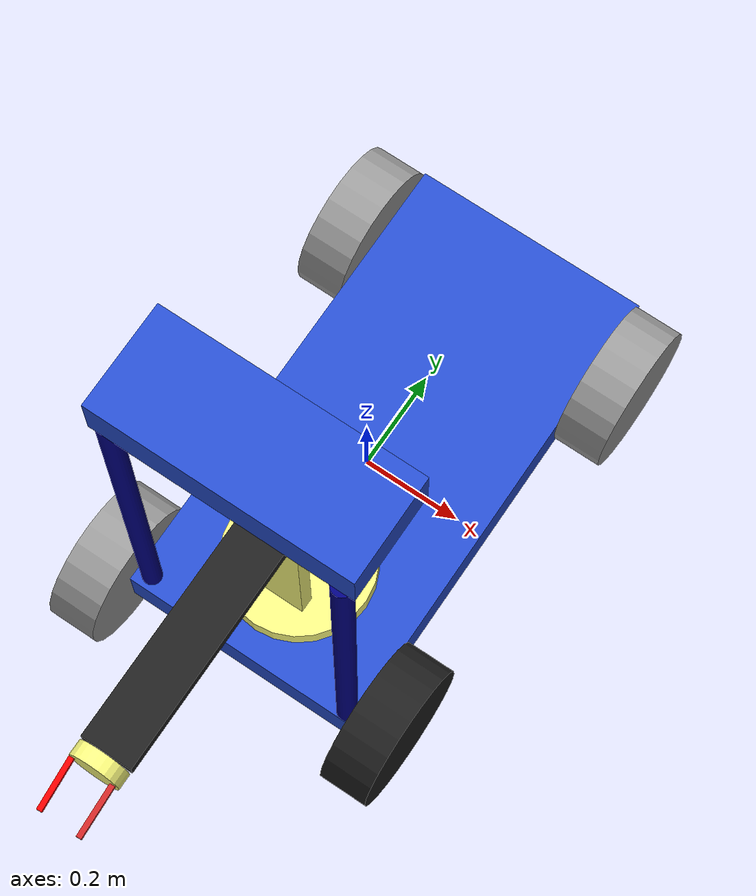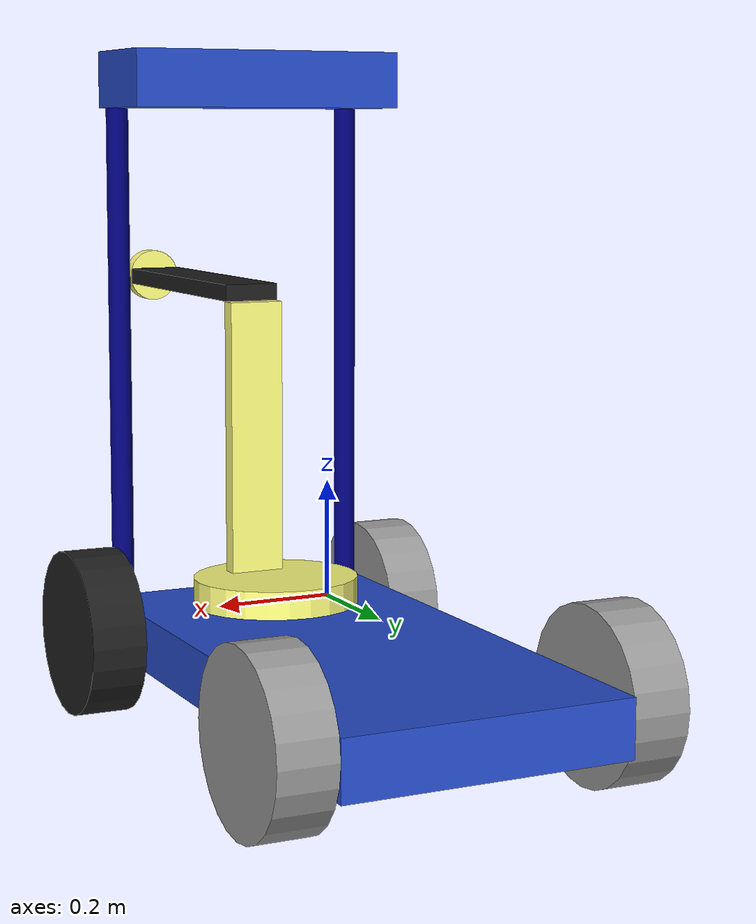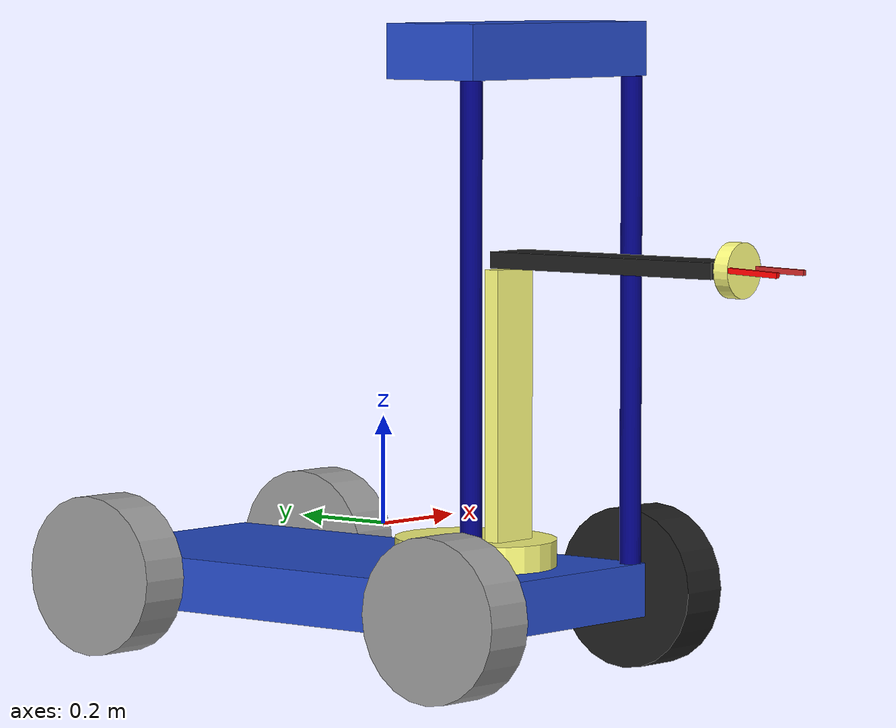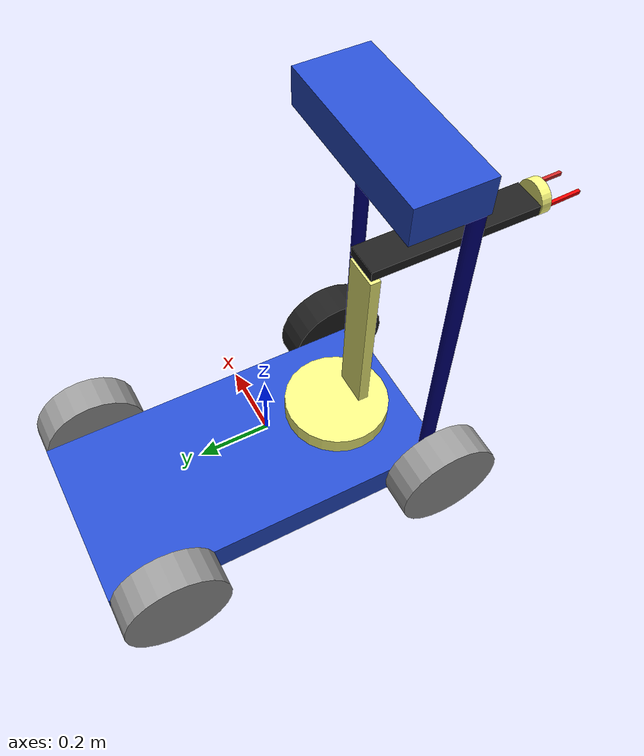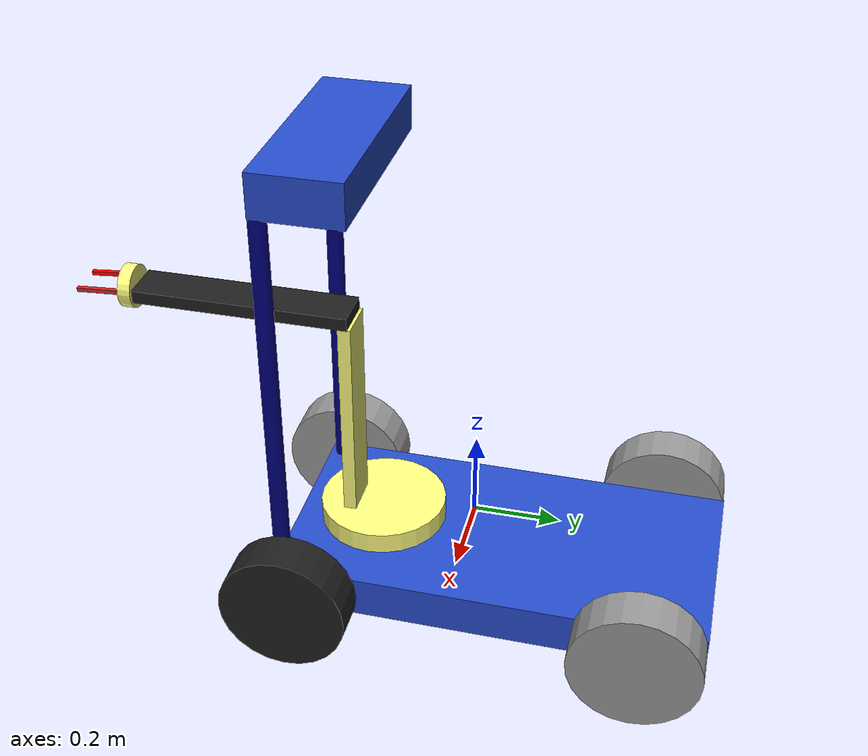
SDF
<?xml version='1.0'?>
<sdf version='1.6'>
  <model name='bot_with_arm'>
    <link name='link_0'>
      <pose frame=''>-0.001071 0.076123 -0.114498 0 -0 0</pose>
      <inertial>
        <mass>1</mass>
        <inertia>
          <ixx>0.166667</ixx>
          <ixy>0</ixy>
          <ixz>0</ixz>
          <iyy>0.166667</iyy>
          <iyz>0</iyz>
          <izz>0.166667</izz>
        </inertia>
        <pose frame=''>0 0 0 0 -0 0</pose>
      </inertial>
      <self_collide>0</self_collide>
      <kinematic>0</kinematic>
      <visual name='visual'>
        <pose frame=''>0 0 0 0 -0 0</pose>
        <geometry>
          <box>
            <size>0.5 1 0.1</size>
          </box>
        </geometry>
        <material>
          <lighting>1</lighting>
          <script>
            <uri>file://media/materials/scripts/gazebo.material</uri>
            <name>Gazebo/Blue</name>
          </script>
          <shader type='pixel'>
            <normal_map>__default__</normal_map>
          </shader>
          <ambient>0 0 0.5 1</ambient>
          <diffuse>0 0 0.5 1</diffuse>
          <specular>0 0 0.5 1</specular>
          <emissive>0 0 0.5 1</emissive>
        </material>
        <transparency>0</transparency>
        <cast_shadows>1</cast_shadows>
      </visual>
      <collision name='collision'>
        <laser_retro>0</laser_retro>
        <max_contacts>10</max_contacts>
        <pose frame=''>0 0 0 0 -0 0</pose>
        <geometry>
          <box>
            <size>0.5 1 0.1</size>
          </box>
        </geometry>
        <surface>
          <friction>
            <ode>
              <mu>1</mu>
              <mu2>1</mu2>
              <fdir1>0 0 0</fdir1>
              <slip1>0</slip1>
              <slip2>0</slip2>
            </ode>
            <torsional>
              <coefficient>1</coefficient>
              <patch_radius>0</patch_radius>
              <surface_radius>0</surface_radius>
              <use_patch_radius>1</use_patch_radius>
              <ode>
                <slip>0</slip>
              </ode>
            </torsional>
          </friction>
          <bounce>
            <restitution_coefficient>0</restitution_coefficient>
            <threshold>1e+06</threshold>
          </bounce>
          <contact>
            <collide_without_contact>0</collide_without_contact>
            <collide_without_contact_bitmask>1</collide_without_contact_bitmask>
            <collide_bitmask>1</collide_bitmask>
            <ode>
              <soft_cfm>0</soft_cfm>
              <soft_erp>0.2</soft_erp>
              <kp>1e+13</kp>
              <kd>1</kd>
              <max_vel>0.01</max_vel>
              <min_depth>0</min_depth>
            </ode>
            <bullet>
              <split_impulse>1</split_impulse>
              <split_impulse_penetration_threshold>-0.01</split_impulse_penetration_threshold>
              <soft_cfm>0</soft_cfm>
              <soft_erp>0.2</soft_erp>
              <kp>1e+13</kp>
              <kd>1</kd>
            </bullet>
          </contact>
        </surface>
      </collision>
    </link>
    <link name='link_0_0'>
      <pose frame=''>-0.001071 -0.223877 -0.034498 0.016016 0.000479 0.012098</pose>
      <inertial>
        <mass>1</mass>
        <inertia>
          <ixx>0.145833</ixx>
          <ixy>0</ixy>
          <ixz>0</ixz>
          <iyy>0.145833</iyy>
          <iyz>0</iyz>
          <izz>0.125</izz>
        </inertia>
        <pose frame=''>0 0 0 0 -0 0</pose>
      </inertial>
      <self_collide>1</self_collide>
      <kinematic>0</kinematic>
      <gravity>1</gravity>
      <visual name='visual'>
        <pose frame=''>0 0 0 0 -0 0</pose>
        <geometry>
          <cylinder>
            <radius>0.15</radius>
            <length>0.05</length>
          </cylinder>
        </geometry>
        <material>
          <lighting>1</lighting>
          <script>
            <uri>file://media/materials/scripts/gazebo.material</uri>
            <name>Gazebo/Grey</name>
          </script>
          <shader type='pixel'>
            <normal_map>__default__</normal_map>
          </shader>
          <ambient>1 1 0.5 1</ambient>
          <diffuse>1 1 0.5 1</diffuse>
          <specular>1 1 0.5 1</specular>
          <emissive>1 1 0.5 1</emissive>
        </material>
        <transparency>0</transparency>
        <cast_shadows>1</cast_shadows>
      </visual>
      <collision name='collision'>
        <laser_retro>0</laser_retro>
        <max_contacts>10</max_contacts>
        <pose frame=''>0 0 0 0 -0 0</pose>
        <geometry>
          <cylinder>
            <radius>0.15</radius>
            <length>0.05</length>
          </cylinder>
        </geometry>
        <surface>
          <friction>
            <ode>
              <mu>1</mu>
              <mu2>1</mu2>
              <fdir1>0 0 0</fdir1>
              <slip1>0</slip1>
              <slip2>0</slip2>
            </ode>
            <torsional>
              <coefficient>1</coefficient>
              <patch_radius>0</patch_radius>
              <surface_radius>0</surface_radius>
              <use_patch_radius>1</use_patch_radius>
              <ode>
                <slip>0</slip>
              </ode>
            </torsional>
          </friction>
          <bounce>
            <restitution_coefficient>0</restitution_coefficient>
            <threshold>1e+06</threshold>
          </bounce>
          <contact>
            <collide_without_contact>0</collide_without_contact>
            <collide_without_contact_bitmask>1</collide_without_contact_bitmask>
            <collide_bitmask>1</collide_bitmask>
            <ode>
              <soft_cfm>0</soft_cfm>
              <soft_erp>0.2</soft_erp>
              <kp>1e+13</kp>
              <kd>1</kd>
              <max_vel>0.01</max_vel>
              <min_depth>0</min_depth>
            </ode>
            <bullet>
              <split_impulse>1</split_impulse>
              <split_impulse_penetration_threshold>-0.01</split_impulse_penetration_threshold>
              <soft_cfm>0</soft_cfm>
              <soft_erp>0.2</soft_erp>
              <kp>1e+13</kp>
              <kd>1</kd>
            </bullet>
          </contact>
        </surface>
      </collision>
    </link>
    <link name='link_1'>
      <pose frame=''>0.299167 -0.374171 -0.114498 1.57 -0 1.57</pose>
      <inertial>
        <mass>1</mass>
        <inertia>
          <ixx>0.145833</ixx>
          <ixy>0</ixy>
          <ixz>0</ixz>
          <iyy>0.145833</iyy>
          <iyz>0</iyz>
          <izz>0.125</izz>
        </inertia>
        <pose frame=''>0 0 0 0 -0 0</pose>
      </inertial>
      <self_collide>0</self_collide>
      <kinematic>0</kinematic>
      <visual name='visual'>
        <pose frame=''>0 0 0 0 -0 0</pose>
        <geometry>
          <cylinder>
            <radius>0.15</radius>
            <length>0.1</length>
          </cylinder>
        </geometry>
        <material>
          <lighting>1</lighting>
          <script>
            <uri>file://media/materials/scripts/gazebo.material</uri>
            <name>Gazebo/Black</name>
          </script>
          <shader type='pixel'>
            <normal_map>__default__</normal_map>
          </shader>
          <ambient>0 0 0 1</ambient>
          <diffuse>0 0 0 1</diffuse>
          <specular>0 0 0 1</specular>
          <emissive>0 0 0 1</emissive>
        </material>
        <transparency>0</transparency>
        <cast_shadows>1</cast_shadows>
      </visual>
      <collision name='collision'>
        <laser_retro>0</laser_retro>
        <max_contacts>10</max_contacts>
        <pose frame=''>0 0 0 0 -0 0</pose>
        <geometry>
          <cylinder>
            <radius>0.15</radius>
            <length>0.1</length>
          </cylinder>
        </geometry>
        <surface>
          <friction>
            <ode>
              <mu>1</mu>
              <mu2>1</mu2>
              <fdir1>0 0 0</fdir1>
              <slip1>0</slip1>
              <slip2>0</slip2>
            </ode>
            <torsional>
              <coefficient>1</coefficient>
              <patch_radius>0</patch_radius>
              <surface_radius>0</surface_radius>
              <use_patch_radius>1</use_patch_radius>
              <ode>
                <slip>0</slip>
              </ode>
            </torsional>
          </friction>
          <bounce>
            <restitution_coefficient>0</restitution_coefficient>
            <threshold>1e+06</threshold>
          </bounce>
          <contact>
            <collide_without_contact>0</collide_without_contact>
            <collide_without_contact_bitmask>1</collide_without_contact_bitmask>
            <collide_bitmask>1</collide_bitmask>
            <ode>
              <soft_cfm>0</soft_cfm>
              <soft_erp>0.2</soft_erp>
              <kp>1e+13</kp>
              <kd>1</kd>
              <max_vel>0.01</max_vel>
              <min_depth>0</min_depth>
            </ode>
            <bullet>
              <split_impulse>1</split_impulse>
              <split_impulse_penetration_threshold>-0.01</split_impulse_penetration_threshold>
              <soft_cfm>0</soft_cfm>
              <soft_erp>0.2</soft_erp>
              <kp>1e+13</kp>
              <kd>1</kd>
            </bullet>
          </contact>
        </surface>
      </collision>
    </link>
    <link name='link_1_0'>
      <pose frame=''>0.012083 -0.290455 0.237009 0 -0 0</pose>
      <inertial>
        <mass>1</mass>
        <inertia>
          <ixx>0.2</ixx>
          <ixy>0</ixy>
          <ixz>0</ixz>
          <iyy>0.2</iyy>
          <iyz>0</iyz>
          <izz>0.2</izz>
        </inertia>
        <pose frame=''>0 0 0 0 -0 0</pose>
      </inertial>
      <self_collide>1</self_collide>
      <kinematic>0</kinematic>
      <gravity>1</gravity>
      <visual name='visual'>
        <pose frame=''>0 0 0 0 -0 0</pose>
        <geometry>
          <box>
            <size>0.1 0.03 0.5</size>
          </box>
        </geometry>
        <material>
          <lighting>1</lighting>
          <script>
            <uri>file://media/materials/scripts/gazebo.material</uri>
            <name>Gazebo/Grey</name>
          </script>
          <shader type='pixel'>
            <normal_map>__default__</normal_map>
          </shader>
          <ambient>1 1 0.5 1</ambient>
          <diffuse>1 1 0.5 1</diffuse>
          <specular>1 1 0.5 1</specular>
          <emissive>1 1 0.5 1</emissive>
        </material>
        <transparency>0</transparency>
        <cast_shadows>1</cast_shadows>
      </visual>
      <collision name='collision'>
        <laser_retro>0</laser_retro>
        <max_contacts>10</max_contacts>
        <pose frame=''>0 0 0 0 -0 0</pose>
        <geometry>
          <box>
            <size>0.1 0.03 0.5</size>
          </box>
        </geometry>
        <surface>
          <friction>
            <ode>
              <mu>1</mu>
              <mu2>1</mu2>
              <fdir1>0 0 0</fdir1>
              <slip1>0</slip1>
              <slip2>0</slip2>
            </ode>
            <torsional>
              <coefficient>1</coefficient>
              <patch_radius>0</patch_radius>
              <surface_radius>0</surface_radius>
              <use_patch_radius>1</use_patch_radius>
              <ode>
                <slip>0</slip>
              </ode>
            </torsional>
          </friction>
          <bounce>
            <restitution_coefficient>0</restitution_coefficient>
            <threshold>1e+06</threshold>
          </bounce>
          <contact>
            <collide_without_contact>0</collide_without_contact>
            <collide_without_contact_bitmask>1</collide_without_contact_bitmask>
            <collide_bitmask>1</collide_bitmask>
            <ode>
              <soft_cfm>0</soft_cfm>
              <soft_erp>0.2</soft_erp>
              <kp>1e+13</kp>
              <kd>1</kd>
              <max_vel>0.01</max_vel>
              <min_depth>0</min_depth>
            </ode>
            <bullet>
              <split_impulse>1</split_impulse>
              <split_impulse_penetration_threshold>-0.01</split_impulse_penetration_threshold>
              <soft_cfm>0</soft_cfm>
              <soft_erp>0.2</soft_erp>
              <kp>1e+13</kp>
              <kd>1</kd>
            </bullet>
          </contact>
        </surface>
      </collision>
    </link>
    <link name='link_1_0_clone'>
      <pose frame=''>0.019889 -0.530803 0.504633 1.5707 -0 0</pose>
      <inertial>
        <mass>1</mass>
        <inertia>
          <ixx>0.2</ixx>
          <ixy>0</ixy>
          <ixz>0</ixz>
          <iyy>0.2</iyy>
          <iyz>0</iyz>
          <izz>0.2</izz>
        </inertia>
        <pose frame=''>0 0 0 0 -0 0</pose>
      </inertial>
      <self_collide>1</self_collide>
      <kinematic>0</kinematic>
      <gravity>1</gravity>
      <visual name='visual_0'>
        <pose frame=''>0 0 0 0 -0 0</pose>
        <geometry>
          <box>
            <size>0.1 0.03 0.5</size>
          </box>
        </geometry>
        <material>
          <lighting>1</lighting>
          <script>
            <uri>file://media/materials/scripts/gazebo.material</uri>
            <name>Gazebo/Black</name>
          </script>
          <shader type='pixel'>
            <normal_map>__default__</normal_map>
          </shader>
          <ambient>1 1 0.5 1</ambient>
          <diffuse>1 1 0.5 1</diffuse>
          <specular>1 1 0.5 1</specular>
          <emissive>1 1 0.5 1</emissive>
        </material>
        <transparency>0</transparency>
        <cast_shadows>1</cast_shadows>
      </visual>
      <collision name='collision'>
        <laser_retro>0</laser_retro>
        <max_contacts>10</max_contacts>
        <pose frame=''>0 0 0 0 -0 0</pose>
        <geometry>
          <box>
            <size>0.1 0.03 0.5</size>
          </box>
        </geometry>
        <surface>
          <friction>
            <ode>
              <mu>1</mu>
              <mu2>1</mu2>
              <fdir1>0 0 0</fdir1>
              <slip1>0</slip1>
              <slip2>0</slip2>
            </ode>
            <torsional>
              <coefficient>1</coefficient>
              <patch_radius>0</patch_radius>
              <surface_radius>0</surface_radius>
              <use_patch_radius>1</use_patch_radius>
              <ode>
                <slip>0</slip>
              </ode>
            </torsional>
          </friction>
          <bounce>
            <restitution_coefficient>0</restitution_coefficient>
            <threshold>1e+06</threshold>
          </bounce>
          <contact>
            <collide_without_contact>0</collide_without_contact>
            <collide_without_contact_bitmask>1</collide_without_contact_bitmask>
            <collide_bitmask>1</collide_bitmask>
            <ode>
              <soft_cfm>0</soft_cfm>
              <soft_erp>0.2</soft_erp>
              <kp>1e+13</kp>
              <kd>1</kd>
              <max_vel>0.01</max_vel>
              <min_depth>0</min_depth>
            </ode>
            <bullet>
              <split_impulse>1</split_impulse>
              <split_impulse_penetration_threshold>-0.01</split_impulse_penetration_threshold>
              <soft_cfm>0</soft_cfm>
              <soft_erp>0.2</soft_erp>
              <kp>1e+13</kp>
              <kd>1</kd>
            </bullet>
          </contact>
        </surface>
      </collision>
    </link>
    <link name='link_1_clone'>
      <pose frame=''>0.299167 0.426083 -0.101282 1.57 -0 1.57</pose>
      <inertial>
        <mass>1</mass>
        <inertia>
          <ixx>0.145833</ixx>
          <ixy>0</ixy>
          <ixz>0</ixz>
          <iyy>0.145833</iyy>
          <iyz>0</iyz>
          <izz>0.125</izz>
        </inertia>
        <pose frame=''>0 0 0 0 -0 0</pose>
      </inertial>
      <self_collide>0</self_collide>
      <kinematic>0</kinematic>
      <visual name='visual'>
        <pose frame=''>0 0 0 0 -0 0</pose>
        <geometry>
          <cylinder>
            <radius>0.15</radius>
            <length>0.1</length>
          </cylinder>
        </geometry>
        <material>
          <lighting>1</lighting>
          <script>
            <uri>file://media/materials/scripts/gazebo.material</uri>
            <name>Gazebo/Grey</name>
          </script>
          <shader type='pixel'>
            <normal_map>__default__</normal_map>
          </shader>
          <ambient>0 0 0 1</ambient>
          <diffuse>0 0 0 1</diffuse>
          <specular>0 0 0 1</specular>
          <emissive>0 0 0 1</emissive>
        </material>
        <transparency>0</transparency>
        <cast_shadows>1</cast_shadows>
      </visual>
      <collision name='collision'>
        <laser_retro>0</laser_retro>
        <max_contacts>10</max_contacts>
        <pose frame=''>0 0 0 0 -0 0</pose>
        <geometry>
          <cylinder>
            <radius>0.15</radius>
            <length>0.1</length>
          </cylinder>
        </geometry>
        <surface>
          <friction>
            <ode>
              <mu>1</mu>
              <mu2>1</mu2>
              <fdir1>0 0 0</fdir1>
              <slip1>0</slip1>
              <slip2>0</slip2>
            </ode>
            <torsional>
              <coefficient>1</coefficient>
              <patch_radius>0</patch_radius>
              <surface_radius>0</surface_radius>
              <use_patch_radius>1</use_patch_radius>
              <ode>
                <slip>0</slip>
              </ode>
            </torsional>
          </friction>
          <bounce>
            <restitution_coefficient>0</restitution_coefficient>
            <threshold>1e+06</threshold>
          </bounce>
          <contact>
            <collide_without_contact>0</collide_without_contact>
            <collide_without_contact_bitmask>1</collide_without_contact_bitmask>
            <collide_bitmask>1</collide_bitmask>
            <ode>
              <soft_cfm>0</soft_cfm>
              <soft_erp>0.2</soft_erp>
              <kp>1e+13</kp>
              <kd>1</kd>
              <max_vel>0.01</max_vel>
              <min_depth>0</min_depth>
            </ode>
            <bullet>
              <split_impulse>1</split_impulse>
              <split_impulse_penetration_threshold>-0.01</split_impulse_penetration_threshold>
              <soft_cfm>0</soft_cfm>
              <soft_erp>0.2</soft_erp>
              <kp>1e+13</kp>
              <kd>1</kd>
            </bullet>
          </contact>
        </surface>
      </collision>
    </link>
    <link name='link_1_clone_0'>
      <pose frame=''>-0.30131 -0.399651 -0.114498 1.57 -0 1.57</pose>
      <inertial>
        <mass>1</mass>
        <inertia>
          <ixx>0.145833</ixx>
          <ixy>0</ixy>
          <ixz>0</ixz>
          <iyy>0.145833</iyy>
          <iyz>0</iyz>
          <izz>0.125</izz>
        </inertia>
        <pose frame=''>0 0 0 0 -0 0</pose>
      </inertial>
      <self_collide>0</self_collide>
      <kinematic>0</kinematic>
      <visual name='visual'>
        <pose frame=''>0 0 0 0 -0 0</pose>
        <geometry>
          <cylinder>
            <radius>0.15</radius>
            <length>0.1</length>
          </cylinder>
        </geometry>
        <material>
          <lighting>1</lighting>
          <script>
            <uri>file://media/materials/scripts/gazebo.material</uri>
            <name>Gazebo/Grey</name>
          </script>
          <shader type='pixel'>
            <normal_map>__default__</normal_map>
          </shader>
          <ambient>0 0 0 1</ambient>
          <diffuse>0 0 0 1</diffuse>
          <specular>0 0 0 1</specular>
          <emissive>0 0 0 1</emissive>
        </material>
        <transparency>0</transparency>
        <cast_shadows>1</cast_shadows>
      </visual>
      <collision name='collision'>
        <laser_retro>0</laser_retro>
        <max_contacts>10</max_contacts>
        <pose frame=''>0 0 0 0 -0 0</pose>
        <geometry>
          <cylinder>
            <radius>0.15</radius>
            <length>0.1</length>
          </cylinder>
        </geometry>
        <surface>
          <friction>
            <ode>
              <mu>1</mu>
              <mu2>1</mu2>
              <fdir1>0 0 0</fdir1>
              <slip1>0</slip1>
              <slip2>0</slip2>
            </ode>
            <torsional>
              <coefficient>1</coefficient>
              <patch_radius>0</patch_radius>
              <surface_radius>0</surface_radius>
              <use_patch_radius>1</use_patch_radius>
              <ode>
                <slip>0</slip>
              </ode>
            </torsional>
          </friction>
          <bounce>
            <restitution_coefficient>0</restitution_coefficient>
            <threshold>1e+06</threshold>
          </bounce>
          <contact>
            <collide_without_contact>0</collide_without_contact>
            <collide_without_contact_bitmask>1</collide_without_contact_bitmask>
            <collide_bitmask>1</collide_bitmask>
            <ode>
              <soft_cfm>0</soft_cfm>
              <soft_erp>0.2</soft_erp>
              <kp>1e+13</kp>
              <kd>1</kd>
              <max_vel>0.01</max_vel>
              <min_depth>0</min_depth>
            </ode>
            <bullet>
              <split_impulse>1</split_impulse>
              <split_impulse_penetration_threshold>-0.01</split_impulse_penetration_threshold>
              <soft_cfm>0</soft_cfm>
              <soft_erp>0.2</soft_erp>
              <kp>1e+13</kp>
              <kd>1</kd>
            </bullet>
          </contact>
        </surface>
      </collision>
    </link>
    <link name='link_1_clone_1'>
      <pose frame=''>-0.30131 0.426083 -0.101282 1.57 -0 1.57</pose>
      <inertial>
        <mass>1</mass>
        <inertia>
          <ixx>0.145833</ixx>
          <ixy>0</ixy>
          <ixz>0</ixz>
          <iyy>0.145833</iyy>
          <iyz>0</iyz>
          <izz>0.125</izz>
        </inertia>
        <pose frame=''>0 0 0 0 -0 0</pose>
      </inertial>
      <self_collide>0</self_collide>
      <kinematic>0</kinematic>
      <visual name='visual'>
        <pose frame=''>0 0 0 0 -0 0</pose>
        <geometry>
          <cylinder>
            <radius>0.15</radius>
            <length>0.1</length>
          </cylinder>
        </geometry>
        <material>
          <lighting>1</lighting>
          <script>
            <uri>file://media/materials/scripts/gazebo.material</uri>
            <name>Gazebo/Grey</name>
          </script>
          <shader type='pixel'>
            <normal_map>__default__</normal_map>
          </shader>
          <ambient>0 0 0 1</ambient>
          <diffuse>0 0 0 1</diffuse>
          <specular>0 0 0 1</specular>
          <emissive>0 0 0 1</emissive>
        </material>
        <transparency>0</transparency>
        <cast_shadows>1</cast_shadows>
      </visual>
      <collision name='collision'>
        <laser_retro>0</laser_retro>
        <max_contacts>10</max_contacts>
        <pose frame=''>0 0 0 0 -0 0</pose>
        <geometry>
          <cylinder>
            <radius>0.15</radius>
            <length>0.1</length>
          </cylinder>
        </geometry>
        <surface>
          <friction>
            <ode>
              <mu>1</mu>
              <mu2>1</mu2>
              <fdir1>0 0 0</fdir1>
              <slip1>0</slip1>
              <slip2>0</slip2>
            </ode>
            <torsional>
              <coefficient>1</coefficient>
              <patch_radius>0</patch_radius>
              <surface_radius>0</surface_radius>
              <use_patch_radius>1</use_patch_radius>
              <ode>
                <slip>0</slip>
              </ode>
            </torsional>
          </friction>
          <bounce>
            <restitution_coefficient>0</restitution_coefficient>
            <threshold>1e+06</threshold>
          </bounce>
          <contact>
            <collide_without_contact>0</collide_without_contact>
            <collide_without_contact_bitmask>1</collide_without_contact_bitmask>
            <collide_bitmask>1</collide_bitmask>
            <ode>
              <soft_cfm>0</soft_cfm>
              <soft_erp>0.2</soft_erp>
              <kp>1e+13</kp>
              <kd>1</kd>
              <max_vel>0.01</max_vel>
              <min_depth>0</min_depth>
            </ode>
            <bullet>
              <split_impulse>1</split_impulse>
              <split_impulse_penetration_threshold>-0.01</split_impulse_penetration_threshold>
              <soft_cfm>0</soft_cfm>
              <soft_erp>0.2</soft_erp>
              <kp>1e+13</kp>
              <kd>1</kd>
            </bullet>
          </contact>
        </surface>
      </collision>
    </link>
    <link name='link_2'>
      <pose frame=''>-0.221072 -0.393877 0.335502 0 -0 0</pose>
      <inertial>
        <mass>1</mass>
        <inertia>
          <ixx>0.145833</ixx>
          <ixy>0</ixy>
          <ixz>0</ixz>
          <iyy>0.145833</iyy>
          <iyz>0</iyz>
          <izz>0.125</izz>
        </inertia>
        <pose frame=''>0 0 0 0 -0 0</pose>
      </inertial>
      <self_collide>0</self_collide>
      <kinematic>0</kinematic>
      <visual name='visual'>
        <pose frame=''>0 0 0 0 -0 0</pose>
        <geometry>
          <cylinder>
            <radius>0.02</radius>
            <length>1</length>
          </cylinder>
        </geometry>
        <material>
          <lighting>1</lighting>
          <script>
            <uri>file://media/materials/scripts/gazebo.material</uri>
            <name>Gazebo/Grey</name>
          </script>
          <shader type='pixel'>
            <normal_map>__default__</normal_map>
          </shader>
          <ambient>0 0 0.5 1</ambient>
          <diffuse>0 0 0.5 1</diffuse>
          <specular>0 0 0.5 1</specular>
          <emissive>0 0 0.5 1</emissive>
        </material>
        <transparency>0</transparency>
        <cast_shadows>1</cast_shadows>
      </visual>
      <collision name='collision'>
        <laser_retro>0</laser_retro>
        <max_contacts>10</max_contacts>
        <pose frame=''>0 0 0 0 -0 0</pose>
        <geometry>
          <cylinder>
            <radius>0.02</radius>
            <length>1</length>
          </cylinder>
        </geometry>
        <surface>
          <friction>
            <ode>
              <mu>1</mu>
              <mu2>1</mu2>
              <fdir1>0 0 0</fdir1>
              <slip1>0</slip1>
              <slip2>0</slip2>
            </ode>
            <torsional>
              <coefficient>1</coefficient>
              <patch_radius>0</patch_radius>
              <surface_radius>0</surface_radius>
              <use_patch_radius>1</use_patch_radius>
              <ode>
                <slip>0</slip>
              </ode>
            </torsional>
          </friction>
          <bounce>
            <restitution_coefficient>0</restitution_coefficient>
            <threshold>1e+06</threshold>
          </bounce>
          <contact>
            <collide_without_contact>0</collide_without_contact>
            <collide_without_contact_bitmask>1</collide_without_contact_bitmask>
            <collide_bitmask>1</collide_bitmask>
            <ode>
              <soft_cfm>0</soft_cfm>
              <soft_erp>0.2</soft_erp>
              <kp>1e+13</kp>
              <kd>1</kd>
              <max_vel>0.01</max_vel>
              <min_depth>0</min_depth>
            </ode>
            <bullet>
              <split_impulse>1</split_impulse>
              <split_impulse_penetration_threshold>-0.01</split_impulse_penetration_threshold>
              <soft_cfm>0</soft_cfm>
              <soft_erp>0.2</soft_erp>
              <kp>1e+13</kp>
              <kd>1</kd>
            </bullet>
          </contact>
        </surface>
      </collision>
    </link>
    <link name='link_2_clone'>
      <pose frame=''>0.228928 -0.403877 0.335502 0 -0 0</pose>
      <inertial>
        <mass>1</mass>
        <inertia>
          <ixx>0.145833</ixx>
          <ixy>0</ixy>
          <ixz>0</ixz>
          <iyy>0.145833</iyy>
          <iyz>0</iyz>
          <izz>0.125</izz>
        </inertia>
        <pose frame=''>0 0 0 0 -0 0</pose>
      </inertial>
      <self_collide>0</self_collide>
      <kinematic>0</kinematic>
      <visual name='visual'>
        <pose frame=''>0 0 0 0 -0 0</pose>
        <geometry>
          <cylinder>
            <radius>0.02</radius>
            <length>1</length>
          </cylinder>
        </geometry>
        <material>
          <lighting>1</lighting>
          <script>
            <uri>file://media/materials/scripts/gazebo.material</uri>
            <name>Gazebo/Grey</name>
          </script>
          <shader type='pixel'>
            <normal_map>__default__</normal_map>
          </shader>
          <ambient>0 0 0.5 1</ambient>
          <diffuse>0 0 0.5 1</diffuse>
          <specular>0 0 0.5 1</specular>
          <emissive>0 0 0.5 1</emissive>
        </material>
        <transparency>0</transparency>
        <cast_shadows>1</cast_shadows>
      </visual>
      <collision name='collision'>
        <laser_retro>0</laser_retro>
        <max_contacts>10</max_contacts>
        <pose frame=''>0 0 0 0 -0 0</pose>
        <geometry>
          <cylinder>
            <radius>0.02</radius>
            <length>1</length>
          </cylinder>
        </geometry>
        <surface>
          <friction>
            <ode>
              <mu>1</mu>
              <mu2>1</mu2>
              <fdir1>0 0 0</fdir1>
              <slip1>0</slip1>
              <slip2>0</slip2>
            </ode>
            <torsional>
              <coefficient>1</coefficient>
              <patch_radius>0</patch_radius>
              <surface_radius>0</surface_radius>
              <use_patch_radius>1</use_patch_radius>
              <ode>
                <slip>0</slip>
              </ode>
            </torsional>
          </friction>
          <bounce>
            <restitution_coefficient>0</restitution_coefficient>
            <threshold>1e+06</threshold>
          </bounce>
          <contact>
            <collide_without_contact>0</collide_without_contact>
            <collide_without_contact_bitmask>1</collide_without_contact_bitmask>
            <collide_bitmask>1</collide_bitmask>
            <ode>
              <soft_cfm>0</soft_cfm>
              <soft_erp>0.2</soft_erp>
              <kp>1e+13</kp>
              <kd>1</kd>
              <max_vel>0.01</max_vel>
              <min_depth>0</min_depth>
            </ode>
            <bullet>
              <split_impulse>1</split_impulse>
              <split_impulse_penetration_threshold>-0.01</split_impulse_penetration_threshold>
              <soft_cfm>0</soft_cfm>
              <soft_erp>0.2</soft_erp>
              <kp>1e+13</kp>
              <kd>1</kd>
            </bullet>
          </contact>
        </surface>
      </collision>
    </link>
    <link name='link_3'>
      <pose frame=''>0.008928 -0.313877 0.885502 0 -0 0</pose>
      <inertial>
        <mass>1</mass>
        <inertia>
          <ixx>0.166667</ixx>
          <ixy>0</ixy>
          <ixz>0</ixz>
          <iyy>0.166667</iyy>
          <iyz>0</iyz>
          <izz>0.166667</izz>
        </inertia>
        <pose frame=''>0 0 0 0 -0 0</pose>
      </inertial>
      <self_collide>0</self_collide>
      <kinematic>0</kinematic>
      <visual name='visual'>
        <pose frame=''>0 0 0 0 -0 0</pose>
        <geometry>
          <box>
            <size>0.5 0.2 0.1</size>
          </box>
        </geometry>
        <material>
          <lighting>1</lighting>
          <script>
            <uri>file://media/materials/scripts/gazebo.material</uri>
            <name>Gazebo/Blue</name>
          </script>
          <shader type='pixel'>
            <normal_map>__default__</normal_map>
          </shader>
          <ambient>0 0 0.5 1</ambient>
          <diffuse>0 0 0.5 1</diffuse>
          <specular>0 0 0.5 1</specular>
          <emissive>0 0 0.5 1</emissive>
        </material>
        <transparency>0</transparency>
        <cast_shadows>1</cast_shadows>
      </visual>
      <collision name='collision'>
        <laser_retro>0</laser_retro>
        <max_contacts>10</max_contacts>
        <pose frame=''>0 0 0 0 -0 0</pose>
        <geometry>
          <box>
            <size>0.5 0.2 0.1</size>
          </box>
        </geometry>
        <surface>
          <friction>
            <ode>
              <mu>1</mu>
              <mu2>1</mu2>
              <fdir1>0 0 0</fdir1>
              <slip1>0</slip1>
              <slip2>0</slip2>
            </ode>
            <torsional>
              <coefficient>1</coefficient>
              <patch_radius>0</patch_radius>
              <surface_radius>0</surface_radius>
              <use_patch_radius>1</use_patch_radius>
              <ode>
                <slip>0</slip>
              </ode>
            </torsional>
          </friction>
          <bounce>
            <restitution_coefficient>0</restitution_coefficient>
            <threshold>1e+06</threshold>
          </bounce>
          <contact>
            <collide_without_contact>0</collide_without_contact>
            <collide_without_contact_bitmask>1</collide_without_contact_bitmask>
            <collide_bitmask>1</collide_bitmask>
            <ode>
              <soft_cfm>0</soft_cfm>
              <soft_erp>0.2</soft_erp>
              <kp>1e+13</kp>
              <kd>1</kd>
              <max_vel>0.01</max_vel>
              <min_depth>0</min_depth>
            </ode>
            <bullet>
              <split_impulse>1</split_impulse>
              <split_impulse_penetration_threshold>-0.01</split_impulse_penetration_threshold>
              <soft_cfm>0</soft_cfm>
              <soft_erp>0.2</soft_erp>
              <kp>1e+13</kp>
              <kd>1</kd>
            </bullet>
          </contact>
        </surface>
      </collision>
    </link>
    <link name='link_4'>
      <pose frame=''>0.019889 -0.800909 0.504657 1.5707 -0 0</pose>
      <inertial>
        <mass>1</mass>
        <inertia>
          <ixx>0.145833</ixx>
          <ixy>0</ixy>
          <ixz>0</ixz>
          <iyy>0.145833</iyy>
          <iyz>0</iyz>
          <izz>0.125</izz>
        </inertia>
        <pose frame=''>0 0 0 0 -0 0</pose>
      </inertial>
      <self_collide>1</self_collide>
      <kinematic>0</kinematic>
      <visual name='visual'>
        <pose frame=''>0 0 0 0 -0 0</pose>
        <geometry>
          <cylinder>
            <radius>0.05</radius>
            <length>0.03</length>
          </cylinder>
        </geometry>
        <material>
          <lighting>1</lighting>
          <script>
            <uri>file://media/materials/scripts/gazebo.material</uri>
            <name>Gazebo/Grey</name>
          </script>
          <shader type='pixel'>
            <normal_map>__default__</normal_map>
          </shader>
          <ambient>1 1 0.5 1</ambient>
          <diffuse>1 1 0.5 1</diffuse>
          <specular>1 1 0.5 1</specular>
          <emissive>1 1 0.5 1</emissive>
        </material>
        <transparency>0</transparency>
        <cast_shadows>1</cast_shadows>
      </visual>
      <collision name='collision'>
        <laser_retro>0</laser_retro>
        <max_contacts>10</max_contacts>
        <pose frame=''>0 0 0 0 -0 0</pose>
        <geometry>
          <cylinder>
            <radius>0.05</radius>
            <length>0.03</length>
          </cylinder>
        </geometry>
        <surface>
          <friction>
            <ode>
              <mu>1</mu>
              <mu2>1</mu2>
              <fdir1>0 0 0</fdir1>
              <slip1>0</slip1>
              <slip2>0</slip2>
            </ode>
            <torsional>
              <coefficient>1</coefficient>
              <patch_radius>0</patch_radius>
              <surface_radius>0</surface_radius>
              <use_patch_radius>1</use_patch_radius>
              <ode>
                <slip>0</slip>
              </ode>
            </torsional>
          </friction>
          <bounce>
            <restitution_coefficient>0</restitution_coefficient>
            <threshold>1e+06</threshold>
          </bounce>
          <contact>
            <collide_without_contact>0</collide_without_contact>
            <collide_without_contact_bitmask>1</collide_without_contact_bitmask>
            <collide_bitmask>1</collide_bitmask>
            <ode>
              <soft_cfm>0</soft_cfm>
              <soft_erp>0.2</soft_erp>
              <kp>1e+13</kp>
              <kd>1</kd>
              <max_vel>0.01</max_vel>
              <min_depth>0</min_depth>
            </ode>
            <bullet>
              <split_impulse>1</split_impulse>
              <split_impulse_penetration_threshold>-0.01</split_impulse_penetration_threshold>
              <soft_cfm>0</soft_cfm>
              <soft_erp>0.2</soft_erp>
              <kp>1e+13</kp>
              <kd>1</kd>
            </bullet>
          </contact>
        </surface>
      </collision>
    </link>
    <link name='link_5_clone'>
      <pose frame=''>0.059889 -0.865909 0.504664 0.032042 0.000269 0.045144</pose>
      <inertial>
        <mass>1</mass>
        <inertia>
          <ixx>0.166667</ixx>
          <ixy>0</ixy>
          <ixz>0</ixz>
          <iyy>0.166667</iyy>
          <iyz>0</iyz>
          <izz>0.166667</izz>
        </inertia>
        <pose frame=''>0 0 0 0 -0 0</pose>
      </inertial>
      <self_collide>1</self_collide>
      <kinematic>0</kinematic>
      <visual name='visual'>
        <pose frame=''>0 0 0 0 -0 0</pose>
        <geometry>
          <box>
            <size>0.01 0.1 0.01</size>
          </box>
        </geometry>
        <material>
          <lighting>1</lighting>
          <script>
            <uri>file://media/materials/scripts/gazebo.material</uri>
            <name>Gazebo/Red</name>
          </script>
          <shader type='pixel'>
            <normal_map>__default__</normal_map>
          </shader>
          <ambient>1 0 0 1</ambient>
          <diffuse>1 0 0 1</diffuse>
          <specular>1 0 0 1</specular>
          <emissive>1 0 0 1</emissive>
        </material>
        <transparency>0</transparency>
        <cast_shadows>1</cast_shadows>
      </visual>
      <collision name='collision'>
        <laser_retro>0</laser_retro>
        <max_contacts>10</max_contacts>
        <pose frame=''>0 0 0 0 -0 0</pose>
        <geometry>
          <box>
            <size>0.01 0.1 0.01</size>
          </box>
        </geometry>
        <surface>
          <friction>
            <ode>
              <mu>1</mu>
              <mu2>1</mu2>
              <fdir1>0 0 0</fdir1>
              <slip1>0</slip1>
              <slip2>0</slip2>
            </ode>
            <torsional>
              <coefficient>1</coefficient>
              <patch_radius>0</patch_radius>
              <surface_radius>0</surface_radius>
              <use_patch_radius>1</use_patch_radius>
              <ode>
                <slip>0</slip>
              </ode>
            </torsional>
          </friction>
          <bounce>
            <restitution_coefficient>0</restitution_coefficient>
            <threshold>1e+06</threshold>
          </bounce>
          <contact>
            <collide_without_contact>0</collide_without_contact>
            <collide_without_contact_bitmask>1</collide_without_contact_bitmask>
            <collide_bitmask>1</collide_bitmask>
            <ode>
              <soft_cfm>0</soft_cfm>
              <soft_erp>0.2</soft_erp>
              <kp>1e+13</kp>
              <kd>1</kd>
              <max_vel>0.01</max_vel>
              <min_depth>0</min_depth>
            </ode>
            <bullet>
              <split_impulse>1</split_impulse>
              <split_impulse_penetration_threshold>-0.01</split_impulse_penetration_threshold>
              <soft_cfm>0</soft_cfm>
              <soft_erp>0.2</soft_erp>
              <kp>1e+13</kp>
              <kd>1</kd>
            </bullet>
          </contact>
        </surface>
      </collision>
    </link>
    <link name='link_5_clone_clone'>
      <pose frame=''>-0.020111 -0.865909 0.504664 0.04806 -0.000139 0.067713</pose>
      <inertial>
        <mass>1</mass>
        <inertia>
          <ixx>0.166667</ixx>
          <ixy>0</ixy>
          <ixz>0</ixz>
          <iyy>0.166667</iyy>
          <iyz>0</iyz>
          <izz>0.166667</izz>
        </inertia>
        <pose frame=''>0 0 0 0 -0 0</pose>
      </inertial>
      <self_collide>1</self_collide>
      <kinematic>0</kinematic>
      <visual name='visual'>
        <pose frame=''>0 0 0 0 -0 0</pose>
        <geometry>
          <box>
            <size>0.01 0.1 0.01</size>
          </box>
        </geometry>
        <material>
          <lighting>1</lighting>
          <script>
            <uri>file://media/materials/scripts/gazebo.material</uri>
            <name>Gazebo/Grey</name>
          </script>
          <shader type='pixel'>
            <normal_map>__default__</normal_map>
          </shader>
          <ambient>1 0 0 1</ambient>
          <diffuse>1 0 0 1</diffuse>
          <specular>1 0 0 1</specular>
          <emissive>1 0 0 1</emissive>
        </material>
        <transparency>0</transparency>
        <cast_shadows>1</cast_shadows>
      </visual>
      <collision name='collision'>
        <laser_retro>0</laser_retro>
        <max_contacts>10</max_contacts>
        <pose frame=''>0 0 0 0 -0 0</pose>
        <geometry>
          <box>
            <size>0.01 0.1 0.01</size>
          </box>
        </geometry>
        <surface>
          <friction>
            <ode>
              <mu>1</mu>
              <mu2>1</mu2>
              <fdir1>0 0 0</fdir1>
              <slip1>0</slip1>
              <slip2>0</slip2>
            </ode>
            <torsional>
              <coefficient>1</coefficient>
              <patch_radius>0</patch_radius>
              <surface_radius>0</surface_radius>
              <use_patch_radius>1</use_patch_radius>
              <ode>
                <slip>0</slip>
              </ode>
            </torsional>
          </friction>
          <bounce>
            <restitution_coefficient>0</restitution_coefficient>
            <threshold>1e+06</threshold>
          </bounce>
          <contact>
            <collide_without_contact>0</collide_without_contact>
            <collide_without_contact_bitmask>1</collide_without_contact_bitmask>
            <collide_bitmask>1</collide_bitmask>
            <ode>
              <soft_cfm>0</soft_cfm>
              <soft_erp>0.2</soft_erp>
              <kp>1e+13</kp>
              <kd>1</kd>
              <max_vel>0.01</max_vel>
              <min_depth>0</min_depth>
            </ode>
            <bullet>
              <split_impulse>1</split_impulse>
              <split_impulse_penetration_threshold>-0.01</split_impulse_penetration_threshold>
              <soft_cfm>0</soft_cfm>
              <soft_erp>0.2</soft_erp>
              <kp>1e+13</kp>
              <kd>1</kd>
            </bullet>
          </contact>
        </surface>
      </collision>
    </link>
    <joint name='link_0_0_JOINT_2' type='revolute'>
      <parent>link_0_0</parent>
      <child>link_1_0</child>
      <pose frame=''>0 0 -0.25 0 -0 0</pose>
      <axis>
        <xyz>1 0 0</xyz>
        <use_parent_model_frame>0</use_parent_model_frame>
        <limit>
          <lower>-1.79769e+308</lower>
          <upper>1.79769e+308</upper>
          <effort>10</effort>
          <velocity>0</velocity>
        </limit>
        <dynamics>
          <spring_reference>0</spring_reference>
          <spring_stiffness>0</spring_stiffness>
          <damping>10</damping>
          <friction>100</friction>
        </dynamics>
      </axis>
      <physics>
        <ode>
          <limit>
            <cfm>0</cfm>
            <erp>0.2</erp>
          </limit>
          <suspension>
            <cfm>0</cfm>
            <erp>0.2</erp>
          </suspension>
        </ode>
      </physics>
    </joint>
    <joint name='link_0_JOINT_0' type='fixed'>
      <parent>link_0</parent>
      <child>link_0_0</child>
      <pose frame=''>-0 0 0 0 -0 0</pose>
      <physics>
        <ode>
          <limit>
            <cfm>0</cfm>
            <erp>0.2</erp>
          </limit>
          <suspension>
            <cfm>0</cfm>
            <erp>0.2</erp>
          </suspension>
        </ode>
      </physics>
    </joint>
    <joint name='link_0_JOINT_1' type='revolute'>
      <parent>link_0</parent>
      <child>link_1</child>
      <pose frame=''>0 0 0 0 -0 0</pose>
      <axis>
        <xyz>0 0 1</xyz>
        <use_parent_model_frame>0</use_parent_model_frame>
        <limit>
          <lower>-1.79769e+308</lower>
          <upper>1.79769e+308</upper>
          <effort>10</effort>
          <velocity>0</velocity>
        </limit>
        <dynamics>
          <spring_reference>0</spring_reference>
          <spring_stiffness>0</spring_stiffness>
          <damping>10</damping>
          <friction>100</friction>
        </dynamics>
      </axis>
      <physics>
        <ode>
          <limit>
            <cfm>0</cfm>
            <erp>0.2</erp>
          </limit>
          <suspension>
            <cfm>0</cfm>
            <erp>0.2</erp>
          </suspension>
        </ode>
      </physics>
    </joint>
    <joint name='link_0_JOINT_2' type='revolute'>
      <parent>link_0</parent>
      <child>link_1_clone_1</child>
      <pose frame=''>0 0 0 0 -0 0</pose>
      <axis>
        <xyz>0 0 1</xyz>
        <use_parent_model_frame>0</use_parent_model_frame>
        <limit>
          <lower>-1.79769e+308</lower>
          <upper>1.79769e+308</upper>
          <effort>10</effort>
          <velocity>0</velocity>
        </limit>
        <dynamics>
          <spring_reference>0</spring_reference>
          <spring_stiffness>0</spring_stiffness>
          <damping>10</damping>
          <friction>100</friction>
        </dynamics>
      </axis>
      <physics>
        <ode>
          <limit>
            <cfm>0</cfm>
            <erp>0.2</erp>
          </limit>
          <suspension>
            <cfm>0</cfm>
            <erp>0.2</erp>
          </suspension>
        </ode>
      </physics>
    </joint>
    <joint name='link_0_JOINT_3' type='revolute'>
      <parent>link_0</parent>
      <child>link_1_clone</child>
      <pose frame=''>0 0 0 0 -0 0</pose>
      <axis>
        <xyz>0 0 1</xyz>
        <use_parent_model_frame>0</use_parent_model_frame>
        <limit>
          <lower>-1.79769e+308</lower>
          <upper>1.79769e+308</upper>
          <effort>10</effort>
          <velocity>0</velocity>
        </limit>
        <dynamics>
          <spring_reference>0</spring_reference>
          <spring_stiffness>0</spring_stiffness>
          <damping>10</damping>
          <friction>100</friction>
        </dynamics>
      </axis>
      <physics>
        <ode>
          <limit>
            <cfm>0</cfm>
            <erp>0.2</erp>
          </limit>
          <suspension>
            <cfm>0</cfm>
            <erp>0.2</erp>
          </suspension>
        </ode>
      </physics>
    </joint>
    <joint name='link_0_JOINT_4' type='fixed'>
      <parent>link_0</parent>
      <child>link_2</child>
      <pose frame=''>0 0 0 0 -0 0</pose>
      <physics>
        <ode>
          <limit>
            <cfm>0</cfm>
            <erp>0.2</erp>
          </limit>
          <suspension>
            <cfm>0</cfm>
            <erp>0.2</erp>
          </suspension>
        </ode>
      </physics>
    </joint>
    <joint name='link_0_JOINT_5' type='fixed'>
      <parent>link_0</parent>
      <child>link_2_clone</child>
      <pose frame=''>0 0 0 0 -0 0</pose>
      <physics>
        <ode>
          <limit>
            <cfm>0</cfm>
            <erp>0.2</erp>
          </limit>
          <suspension>
            <cfm>0</cfm>
            <erp>0.2</erp>
          </suspension>
        </ode>
      </physics>
    </joint>
    <joint name='link_0_JOINT_6' type='revolute'>
      <parent>link_0</parent>
      <child>link_1_clone_0</child>
      <pose frame=''>0 0 0 0 -0 0</pose>
      <axis>
        <xyz>0 0 1</xyz>
        <use_parent_model_frame>0</use_parent_model_frame>
        <limit>
          <lower>-1.79769e+308</lower>
          <upper>1.79769e+308</upper>
          <effort>10</effort>
          <velocity>0</velocity>
        </limit>
        <dynamics>
          <spring_reference>0</spring_reference>
          <spring_stiffness>0</spring_stiffness>
          <damping>10</damping>
          <friction>100</friction>
        </dynamics>
      </axis>
      <physics>
        <ode>
          <limit>
            <cfm>0</cfm>
            <erp>0.2</erp>
          </limit>
          <suspension>
            <cfm>0</cfm>
            <erp>0.2</erp>
          </suspension>
        </ode>
      </physics>
    </joint>
    <joint name='link_1_0_JOINT_3' type='revolute'>
      <parent>link_1_0</parent>
      <child>link_1_0_clone</child>
      <pose frame=''>0 0 -0.25 0 -0 0</pose>
      <axis>
        <xyz>1 0 0</xyz>
        <use_parent_model_frame>0</use_parent_model_frame>
        <limit>
          <lower>-1.79769e+308</lower>
          <upper>1.79769e+308</upper>
          <effort>10</effort>
          <velocity>0</velocity>
        </limit>
        <dynamics>
          <spring_reference>0</spring_reference>
          <spring_stiffness>0</spring_stiffness>
          <damping>10</damping>
          <friction>100</friction>
        </dynamics>
      </axis>
      <physics>
        <ode>
          <limit>
            <cfm>0</cfm>
            <erp>0.2</erp>
          </limit>
          <suspension>
            <cfm>0</cfm>
            <erp>0.2</erp>
          </suspension>
        </ode>
      </physics>
    </joint>
    <joint name='link_1_0_clone_JOINT_4' type='revolute'>
      <parent>link_1_0_clone</parent>
      <child>link_4</child>
      <pose frame=''>0 0 0 0 -0 0</pose>
      <axis>
        <xyz>0 0 1</xyz>
        <use_parent_model_frame>0</use_parent_model_frame>
        <limit>
          <lower>-1.79769e+308</lower>
          <upper>1.79769e+308</upper>
          <effort>10</effort>
          <velocity>0</velocity>
        </limit>
        <dynamics>
          <spring_reference>0</spring_reference>
          <spring_stiffness>0</spring_stiffness>
          <damping>10</damping>
          <friction>100</friction>
        </dynamics>
      </axis>
      <physics>
        <ode>
          <limit>
            <cfm>0</cfm>
            <erp>0.2</erp>
          </limit>
          <suspension>
            <cfm>0</cfm>
            <erp>0.2</erp>
          </suspension>
        </ode>
      </physics>
    </joint>
    <joint name='link_2_JOINT_7' type='fixed'>
      <parent>link_2</parent>
      <child>link_3</child>
      <pose frame=''>0 0 0 0 -0 0</pose>
      <physics>
        <ode>
          <limit>
            <cfm>0</cfm>
            <erp>0.2</erp>
          </limit>
          <suspension>
            <cfm>0</cfm>
            <erp>0.2</erp>
          </suspension>
        </ode>
      </physics>
    </joint>
    <joint name='link_4_JOINT_10' type='revolute'>
      <parent>link_4</parent>
      <child>link_5_clone</child>
      <pose frame=''>0 0.05 0 0 -0 0</pose>
      <axis>
        <xyz>1 0 0</xyz>
        <use_parent_model_frame>0</use_parent_model_frame>
        <limit>
          <lower>-1.79769e+308</lower>
          <upper>1.79769e+308</upper>
          <effort>10</effort>
          <velocity>0</velocity>
        </limit>
        <dynamics>
          <spring_reference>0</spring_reference>
          <spring_stiffness>0</spring_stiffness>
          <damping>10</damping>
          <friction>100</friction>
        </dynamics>
      </axis>
      <physics>
        <ode>
          <limit>
            <cfm>0</cfm>
            <erp>0.2</erp>
          </limit>
          <suspension>
            <cfm>0</cfm>
            <erp>0.2</erp>
          </suspension>
        </ode>
      </physics>
    </joint>
    <joint name='link_4_JOINT_11' type='revolute'>
      <parent>link_4</parent>
      <child>link_5_clone_clone</child>
      <pose frame=''>0 0.05 0 0 -0 0</pose>
      <axis>
        <xyz>0 0 1</xyz>
        <use_parent_model_frame>0</use_parent_model_frame>
        <limit>
          <lower>-1.79769e+308</lower>
          <upper>1.79769e+308</upper>
          <effort>10</effort>
          <velocity>0</velocity>
        </limit>
        <dynamics>
          <spring_reference>0</spring_reference>
          <spring_stiffness>0</spring_stiffness>
          <damping>10</damping>
          <friction>100</friction>
        </dynamics>
      </axis>
      <physics>
        <ode>
          <limit>
            <cfm>0</cfm>
            <erp>0.2</erp>
          </limit>
          <suspension>
            <cfm>0</cfm>
            <erp>0.2</erp>
          </suspension>
        </ode>
      </physics>
    </joint>
    <static>0</static>
    <allow_auto_disable>1</allow_auto_disable>
  </model>
</sdf>
